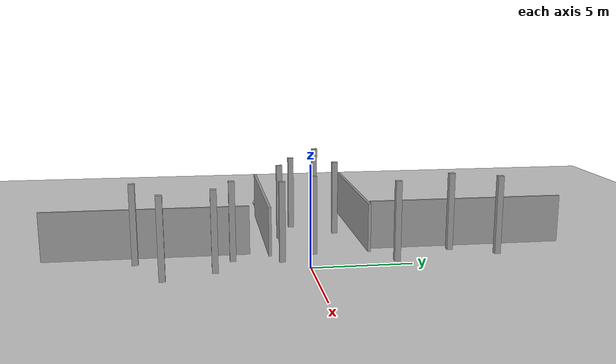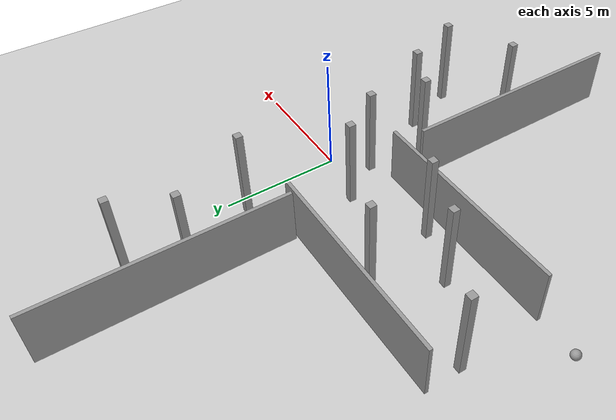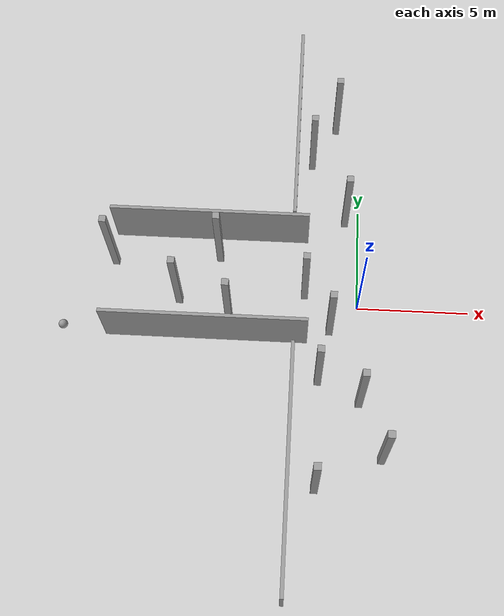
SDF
<sdf version="1.6">
 <world name="default">
  <model name="ground_plane">
   <static>1</static>
   <link name="link">
    <collision name="collision">
     <geometry><plane><normal>0 0 1</normal><size>100 100</size></plane></geometry>
     <surface><friction><ode><mu>100</mu><mu2>50</mu2></ode></friction></surface>
    </collision>
    <visual name="visual">
     <cast_shadows>0</cast_shadows>
     <geometry><plane><normal>0 0 1</normal><size>100 100</size></plane></geometry>
     <material>
      <script><uri>file://media/materials/scripts/gazebo.material</uri><name>Gazebo/Grey</name></script>
     </material>
    </visual>
   </link>
  </model>
  <model name="Untitled">
   <pose>-6.85388 3.37469 0 0 -0 0</pose>
   <link name="Wall_1">
    <collision name="Wall_1_Collision">
     <geometry><box><size>9 0.15 2.5</size></box></geometry>
     <pose>0 0 1.25 0 -0 0</pose>
    </collision>
    <visual name="Wall_1_Visual">
     <pose>0 0 1.25 0 -0 0</pose>
     <geometry><box><size>9 0.15 2.5</size></box></geometry>
     <material>
      <script><uri>file://media/materials/scripts/gazebo.material</uri><name>Gazebo/Grey</name></script>
      <ambient>1 1 1 1</ambient>
     </material>
     <meta><layer>0</layer></meta>
    </visual>
   </link>
   <static>1</static>
  </model>
  <model name="Untitled_clone">
   <pose>-6.74636 -1.72511 0 0 -0 0</pose>
   <link name="Wall_1">
    <collision name="Wall_1_Collision">
     <geometry><box><size>9 0.15 2.5</size></box></geometry>
     <pose>0 0 1.25 0 -0 0</pose>
    </collision>
    <visual name="Wall_1_Visual">
     <pose>0 0 1.25 0 -0 0</pose>
     <geometry><box><size>9 0.15 2.5</size></box></geometry>
     <material>
      <script><uri>file://media/materials/scripts/gazebo.material</uri><name>Gazebo/Grey</name></script>
      <ambient>1 1 1 1</ambient>
     </material>
     <meta><layer>0</layer></meta>
    </visual>
   </link>
   <static>1</static>
  </model>
  <model name="Untitled_0">
   <pose>-2.85637 -7.82972 0 0 -0 0</pose>
   <link name="Wall_3">
    <collision name="Wall_3_Collision">
     <geometry><box><size>10.25 0.15 2.5</size></box></geometry>
     <pose>0 0 1.25 0 -0 0</pose>
    </collision>
    <visual name="Wall_3_Visual">
     <pose>0 0 1.25 0 -0 0</pose>
     <geometry><box><size>10.25 0.15 2.5</size></box></geometry>
     <material>
      <script><uri>file://media/materials/scripts/gazebo.material</uri><name>Gazebo/Grey</name></script>
      <ambient>1 1 1 1</ambient>
     </material>
     <meta><layer>0</layer></meta>
    </visual>
    <pose>0 0 0 0 -0 -1.5708</pose>
   </link>
   <static>1</static>
  </model>
  <model name="Untitled_0_clone_0">
   <pose>-3.02847 8.65549 0 0 -0 0</pose>
   <link name="Wall_3">
    <collision name="Wall_3_Collision">
     <geometry><box><size>10.25 0.15 2.5</size></box></geometry>
     <pose>0 0 1.25 0 -0 0</pose>
    </collision>
    <visual name="Wall_3_Visual">
     <pose>0 0 1.25 0 -0 0</pose>
     <geometry><box><size>10.25 0.15 2.5</size></box></geometry>
     <material>
      <script><uri>file://media/materials/scripts/gazebo.material</uri><name>Gazebo/Grey</name></script>
      <ambient>1 1 1 1</ambient>
     </material>
     <meta><layer>0</layer></meta>
    </visual>
    <pose>0 0 0 0 -0 -1.5708</pose>
   </link>
   <static>1</static>
  </model>
  <model name="unit_box_clone_clone_24">
   <link name="link">
    <inertial>
     <mass>1000</mass>
     <inertia><ixx>1340.83</ixx><ixy>0</ixy><ixz>0</ixz><iyy>1340.83</iyy><iyz>0</iyz><izz>15</izz></inertia>
    </inertial>
    <visual name="visual">
     <geometry><box><size>0.3 0.3 4</size></box></geometry>
     <material>
      <script><name>Gazebo/Grey</name><uri>file://media/materials/scripts/gazebo.material</uri></script>
      <shader type="pixel"><normal_map>__default__</normal_map></shader>
      <ambient>0.3 0.3 0.3 1</ambient>
      <diffuse>0.7 0.7 0.7 1</diffuse>
      <specular>0.01 0.01 0.01 1</specular>
      <emissive>0 0 0 1</emissive>
     </material>
    </visual>
    <collision name="collision">
     <geometry><box><size>0.3 0.3 4</size></box></geometry>
     <surface>
      <friction>
       <ode><mu>1</mu><mu2>1</mu2><fdir1>0 0 0</fdir1><slip1>0</slip1><slip2>0</slip2></ode>
       <torsional>
        <coefficient>1</coefficient>
        <patch_radius>0</patch_radius>
        <surface_radius>0</surface_radius>
        <use_patch_radius>1</use_patch_radius>
        <ode><slip>0</slip></ode>
       </torsional>
      </friction>
      <bounce><restitution_coefficient>0</restitution_coefficient><threshold>1e+06</threshold></bounce>
      <contact>
       <collide_without_contact>0</collide_without_contact>
       <collide_without_contact_bitmask>1</collide_without_contact_bitmask>
       <collide_bitmask>1</collide_bitmask>
       <ode>
        <soft_cfm>0</soft_cfm>
        <soft_erp>0.2</soft_erp>
        <kp>1e+13</kp>
        <kd>1</kd>
        <max_vel>0.01</max_vel>
        <min_depth>0</min_depth>
       </ode>
       <bullet>
        <split_impulse>1</split_impulse>
        <split_impulse_penetration_threshold>-0.01</split_impulse_penetration_threshold>
        <soft_cfm>0</soft_cfm>
        <soft_erp>0.2</soft_erp>
        <kp>1e+13</kp>
        <kd>1</kd>
       </bullet>
      </contact>
     </surface>
    </collision>
   </link>
   <static>0</static>
   <pose>-11.2321 1.86645 2.00018 0.001194 1e-05 -0.002926</pose>
  </model>
  <model name="unit_box_clone_clone_24_clone">
   <link name="link">
    <inertial>
     <mass>1000</mass>
     <inertia><ixx>1340.83</ixx><ixy>0</ixy><ixz>0</ixz><iyy>1340.83</iyy><iyz>0</iyz><izz>15</izz></inertia>
    </inertial>
    <visual name="visual">
     <geometry><box><size>0.3 0.3 4</size></box></geometry>
     <material>
      <script><name>Gazebo/Grey</name><uri>file://media/materials/scripts/gazebo.material</uri></script>
      <shader type="pixel"><normal_map>__default__</normal_map></shader>
      <ambient>0.3 0.3 0.3 1</ambient>
      <diffuse>0.7 0.7 0.7 1</diffuse>
      <specular>0.01 0.01 0.01 1</specular>
      <emissive>0 0 0 1</emissive>
     </material>
    </visual>
    <collision name="collision">
     <geometry><box><size>0.3 0.3 4</size></box></geometry>
     <surface>
      <friction>
       <ode><mu>1</mu><mu2>1</mu2><fdir1>0 0 0</fdir1><slip1>0</slip1><slip2>0</slip2></ode>
       <torsional>
        <coefficient>1</coefficient>
        <patch_radius>0</patch_radius>
        <surface_radius>0</surface_radius>
        <use_patch_radius>1</use_patch_radius>
        <ode><slip>0</slip></ode>
       </torsional>
      </friction>
      <bounce><restitution_coefficient>0</restitution_coefficient><threshold>1e+06</threshold></bounce>
      <contact>
       <collide_without_contact>0</collide_without_contact>
       <collide_without_contact_bitmask>1</collide_without_contact_bitmask>
       <collide_bitmask>1</collide_bitmask>
       <ode>
        <soft_cfm>0</soft_cfm>
        <soft_erp>0.2</soft_erp>
        <kp>1e+13</kp>
        <kd>1</kd>
        <max_vel>0.01</max_vel>
        <min_depth>0</min_depth>
       </ode>
       <bullet>
        <split_impulse>1</split_impulse>
        <split_impulse_penetration_threshold>-0.01</split_impulse_penetration_threshold>
        <soft_cfm>0</soft_cfm>
        <soft_erp>0.2</soft_erp>
        <kp>1e+13</kp>
        <kd>1</kd>
       </bullet>
      </contact>
     </surface>
    </collision>
   </link>
   <static>0</static>
   <pose>-2.42598 0.508837 2.00018 0.001194 1e-05 -0.002926</pose>
  </model>
  <model name="unit_box_clone_clone_24_clone_0">
   <link name="link">
    <inertial>
     <mass>1000</mass>
     <inertia><ixx>1340.83</ixx><ixy>0</ixy><ixz>0</ixz><iyy>1340.83</iyy><iyz>0</iyz><izz>15</izz></inertia>
    </inertial>
    <visual name="visual">
     <geometry><box><size>0.3 0.3 4</size></box></geometry>
     <material>
      <script><name>Gazebo/Grey</name><uri>file://media/materials/scripts/gazebo.material</uri></script>
      <shader type="pixel"><normal_map>__default__</normal_map></shader>
      <ambient>0.3 0.3 0.3 1</ambient>
      <diffuse>0.7 0.7 0.7 1</diffuse>
      <specular>0.01 0.01 0.01 1</specular>
      <emissive>0 0 0 1</emissive>
     </material>
    </visual>
    <collision name="collision">
     <geometry><box><size>0.3 0.3 4</size></box></geometry>
     <surface>
      <friction>
       <ode><mu>1</mu><mu2>1</mu2><fdir1>0 0 0</fdir1><slip1>0</slip1><slip2>0</slip2></ode>
       <torsional>
        <coefficient>1</coefficient>
        <patch_radius>0</patch_radius>
        <surface_radius>0</surface_radius>
        <use_patch_radius>1</use_patch_radius>
        <ode><slip>0</slip></ode>
       </torsional>
      </friction>
      <bounce><restitution_coefficient>0</restitution_coefficient><threshold>1e+06</threshold></bounce>
      <contact>
       <collide_without_contact>0</collide_without_contact>
       <collide_without_contact_bitmask>1</collide_without_contact_bitmask>
       <collide_bitmask>1</collide_bitmask>
       <ode>
        <soft_cfm>0</soft_cfm>
        <soft_erp>0.2</soft_erp>
        <kp>1e+13</kp>
        <kd>1</kd>
        <max_vel>0.01</max_vel>
        <min_depth>0</min_depth>
       </ode>
       <bullet>
        <split_impulse>1</split_impulse>
        <split_impulse_penetration_threshold>-0.01</split_impulse_penetration_threshold>
        <soft_cfm>0</soft_cfm>
        <soft_erp>0.2</soft_erp>
        <kp>1e+13</kp>
        <kd>1</kd>
       </bullet>
      </contact>
     </surface>
    </collision>
   </link>
   <static>0</static>
   <pose>-1.26207 -1.22355 2.00018 0.001194 1e-05 -0.002926</pose>
  </model>
  <model name="unit_box_clone_clone_24_clone_2">
   <link name="link">
    <inertial>
     <mass>1000</mass>
     <inertia><ixx>1340.83</ixx><ixy>0</ixy><ixz>0</ixz><iyy>1340.83</iyy><iyz>0</iyz><izz>15</izz></inertia>
    </inertial>
    <visual name="visual">
     <geometry><box><size>0.3 0.3 4</size></box></geometry>
     <material>
      <script><name>Gazebo/Grey</name><uri>file://media/materials/scripts/gazebo.material</uri></script>
      <shader type="pixel"><normal_map>__default__</normal_map></shader>
      <ambient>0.3 0.3 0.3 1</ambient>
      <diffuse>0.7 0.7 0.7 1</diffuse>
      <specular>0.01 0.01 0.01 1</specular>
      <emissive>0 0 0 1</emissive>
     </material>
    </visual>
    <collision name="collision">
     <geometry><box><size>0.3 0.3 4</size></box></geometry>
     <surface>
      <friction>
       <ode><mu>1</mu><mu2>1</mu2><fdir1>0 0 0</fdir1><slip1>0</slip1><slip2>0</slip2></ode>
       <torsional>
        <coefficient>1</coefficient>
        <patch_radius>0</patch_radius>
        <surface_radius>0</surface_radius>
        <use_patch_radius>1</use_patch_radius>
        <ode><slip>0</slip></ode>
       </torsional>
      </friction>
      <bounce><restitution_coefficient>0</restitution_coefficient><threshold>1e+06</threshold></bounce>
      <contact>
       <collide_without_contact>0</collide_without_contact>
       <collide_without_contact_bitmask>1</collide_without_contact_bitmask>
       <collide_bitmask>1</collide_bitmask>
       <ode>
        <soft_cfm>0</soft_cfm>
        <soft_erp>0.2</soft_erp>
        <kp>1e+13</kp>
        <kd>1</kd>
        <max_vel>0.01</max_vel>
        <min_depth>0</min_depth>
       </ode>
       <bullet>
        <split_impulse>1</split_impulse>
        <split_impulse_penetration_threshold>-0.01</split_impulse_penetration_threshold>
        <soft_cfm>0</soft_cfm>
        <soft_erp>0.2</soft_erp>
        <kp>1e+13</kp>
        <kd>1</kd>
       </bullet>
      </contact>
     </surface>
    </collision>
   </link>
   <static>0</static>
   <pose>-0.653791 4.39949 2.00018 0.001194 1e-05 -0.002926</pose>
  </model>
  <model name="unit_box_clone_clone_24_clone_4">
   <link name="link">
    <inertial>
     <mass>1000</mass>
     <inertia><ixx>1340.83</ixx><ixy>0</ixy><ixz>0</ixz><iyy>1340.83</iyy><iyz>0</iyz><izz>15</izz></inertia>
    </inertial>
    <visual name="visual">
     <geometry><box><size>0.3 0.3 4</size></box></geometry>
     <material>
      <script><name>Gazebo/Grey</name><uri>file://media/materials/scripts/gazebo.material</uri></script>
      <shader type="pixel"><normal_map>__default__</normal_map></shader>
      <ambient>0.3 0.3 0.3 1</ambient>
      <diffuse>0.7 0.7 0.7 1</diffuse>
      <specular>0.01 0.01 0.01 1</specular>
      <emissive>0 0 0 1</emissive>
     </material>
    </visual>
    <collision name="collision">
     <geometry><box><size>0.3 0.3 4</size></box></geometry>
     <surface>
      <friction>
       <ode><mu>1</mu><mu2>1</mu2><fdir1>0 0 0</fdir1><slip1>0</slip1><slip2>0</slip2></ode>
       <torsional>
        <coefficient>1</coefficient>
        <patch_radius>0</patch_radius>
        <surface_radius>0</surface_radius>
        <use_patch_radius>1</use_patch_radius>
        <ode><slip>0</slip></ode>
       </torsional>
      </friction>
      <bounce><restitution_coefficient>0</restitution_coefficient><threshold>1e+06</threshold></bounce>
      <contact>
       <collide_without_contact>0</collide_without_contact>
       <collide_without_contact_bitmask>1</collide_without_contact_bitmask>
       <collide_bitmask>1</collide_bitmask>
       <ode>
        <soft_cfm>0</soft_cfm>
        <soft_erp>0.2</soft_erp>
        <kp>1e+13</kp>
        <kd>1</kd>
        <max_vel>0.01</max_vel>
        <min_depth>0</min_depth>
       </ode>
       <bullet>
        <split_impulse>1</split_impulse>
        <split_impulse_penetration_threshold>-0.01</split_impulse_penetration_threshold>
        <soft_cfm>0</soft_cfm>
        <soft_erp>0.2</soft_erp>
        <kp>1e+13</kp>
        <kd>1</kd>
       </bullet>
      </contact>
     </surface>
    </collision>
   </link>
   <static>0</static>
   <pose>-2.28627 7.58438 2.00018 0.001194 1e-05 -0.002926</pose>
  </model>
  <model name="unit_box_clone_clone_24_clone_6">
   <link name="link">
    <inertial>
     <mass>1000</mass>
     <inertia><ixx>1340.83</ixx><ixy>0</ixy><ixz>0</ixz><iyy>1340.83</iyy><iyz>0</iyz><izz>15</izz></inertia>
    </inertial>
    <visual name="visual">
     <geometry><box><size>0.3 0.3 4</size></box></geometry>
     <material>
      <script><name>Gazebo/Grey</name><uri>file://media/materials/scripts/gazebo.material</uri></script>
      <shader type="pixel"><normal_map>__default__</normal_map></shader>
      <ambient>0.3 0.3 0.3 1</ambient>
      <diffuse>0.7 0.7 0.7 1</diffuse>
      <specular>0.01 0.01 0.01 1</specular>
      <emissive>0 0 0 1</emissive>
     </material>
    </visual>
    <collision name="collision">
     <geometry><box><size>0.3 0.3 4</size></box></geometry>
     <surface>
      <friction>
       <ode><mu>1</mu><mu2>1</mu2><fdir1>0 0 0</fdir1><slip1>0</slip1><slip2>0</slip2></ode>
       <torsional>
        <coefficient>1</coefficient>
        <patch_radius>0</patch_radius>
        <surface_radius>0</surface_radius>
        <use_patch_radius>1</use_patch_radius>
        <ode><slip>0</slip></ode>
       </torsional>
      </friction>
      <bounce><restitution_coefficient>0</restitution_coefficient><threshold>1e+06</threshold></bounce>
      <contact>
       <collide_without_contact>0</collide_without_contact>
       <collide_without_contact_bitmask>1</collide_without_contact_bitmask>
       <collide_bitmask>1</collide_bitmask>
       <ode>
        <soft_cfm>0</soft_cfm>
        <soft_erp>0.2</soft_erp>
        <kp>1e+13</kp>
        <kd>1</kd>
        <max_vel>0.01</max_vel>
        <min_depth>0</min_depth>
       </ode>
       <bullet>
        <split_impulse>1</split_impulse>
        <split_impulse_penetration_threshold>-0.01</split_impulse_penetration_threshold>
        <soft_cfm>0</soft_cfm>
        <soft_erp>0.2</soft_erp>
        <kp>1e+13</kp>
        <kd>1</kd>
       </bullet>
      </contact>
     </surface>
    </collision>
   </link>
   <static>0</static>
   <pose>-1.17801 9.74891 2.00018 0.001194 1e-05 -0.002926</pose>
  </model>
  <model name="unit_box_clone_clone_24_clone_7">
   <link name="link">
    <inertial>
     <mass>1000</mass>
     <inertia><ixx>1340.83</ixx><ixy>0</ixy><ixz>0</ixz><iyy>1340.83</iyy><iyz>0</iyz><izz>15</izz></inertia>
    </inertial>
    <visual name="visual">
     <geometry><box><size>0.3 0.3 4</size></box></geometry>
     <material>
      <script><name>Gazebo/Grey</name><uri>file://media/materials/scripts/gazebo.material</uri></script>
      <shader type="pixel"><normal_map>__default__</normal_map></shader>
      <ambient>0.3 0.3 0.3 1</ambient>
      <diffuse>0.7 0.7 0.7 1</diffuse>
      <specular>0.01 0.01 0.01 1</specular>
      <emissive>0 0 0 1</emissive>
     </material>
    </visual>
    <collision name="collision">
     <geometry><box><size>0.3 0.3 4</size></box></geometry>
     <surface>
      <friction>
       <ode><mu>1</mu><mu2>1</mu2><fdir1>0 0 0</fdir1><slip1>0</slip1><slip2>0</slip2></ode>
       <torsional>
        <coefficient>1</coefficient>
        <patch_radius>0</patch_radius>
        <surface_radius>0</surface_radius>
        <use_patch_radius>1</use_patch_radius>
        <ode><slip>0</slip></ode>
       </torsional>
      </friction>
      <bounce><restitution_coefficient>0</restitution_coefficient><threshold>1e+06</threshold></bounce>
      <contact>
       <collide_without_contact>0</collide_without_contact>
       <collide_without_contact_bitmask>1</collide_without_contact_bitmask>
       <collide_bitmask>1</collide_bitmask>
       <ode>
        <soft_cfm>0</soft_cfm>
        <soft_erp>0.2</soft_erp>
        <kp>1e+13</kp>
        <kd>1</kd>
        <max_vel>0.01</max_vel>
        <min_depth>0</min_depth>
       </ode>
       <bullet>
        <split_impulse>1</split_impulse>
        <split_impulse_penetration_threshold>-0.01</split_impulse_penetration_threshold>
        <soft_cfm>0</soft_cfm>
        <soft_erp>0.2</soft_erp>
        <kp>1e+13</kp>
        <kd>1</kd>
       </bullet>
      </contact>
     </surface>
    </collision>
   </link>
   <static>0</static>
   <pose>-8.10764 0.035783 2.00018 0.001194 1e-05 -0.002926</pose>
  </model>
  <model name="unit_box_clone_clone_24_clone_8">
   <link name="link">
    <inertial>
     <mass>1000</mass>
     <inertia><ixx>1340.83</ixx><ixy>0</ixy><ixz>0</ixz><iyy>1340.83</iyy><iyz>0</iyz><izz>15</izz></inertia>
    </inertial>
    <visual name="visual">
     <geometry><box><size>0.3 0.3 4</size></box></geometry>
     <material>
      <script><name>Gazebo/Grey</name><uri>file://media/materials/scripts/gazebo.material</uri></script>
      <shader type="pixel"><normal_map>__default__</normal_map></shader>
      <ambient>0.3 0.3 0.3 1</ambient>
      <diffuse>0.7 0.7 0.7 1</diffuse>
      <specular>0.01 0.01 0.01 1</specular>
      <emissive>0 0 0 1</emissive>
     </material>
    </visual>
    <collision name="collision">
     <geometry><box><size>0.3 0.3 4</size></box></geometry>
     <surface>
      <friction>
       <ode><mu>1</mu><mu2>1</mu2><fdir1>0 0 0</fdir1><slip1>0</slip1><slip2>0</slip2></ode>
       <torsional>
        <coefficient>1</coefficient>
        <patch_radius>0</patch_radius>
        <surface_radius>0</surface_radius>
        <use_patch_radius>1</use_patch_radius>
        <ode><slip>0</slip></ode>
       </torsional>
      </friction>
      <bounce><restitution_coefficient>0</restitution_coefficient><threshold>1e+06</threshold></bounce>
      <contact>
       <collide_without_contact>0</collide_without_contact>
       <collide_without_contact_bitmask>1</collide_without_contact_bitmask>
       <collide_bitmask>1</collide_bitmask>
       <ode>
        <soft_cfm>0</soft_cfm>
        <soft_erp>0.2</soft_erp>
        <kp>1e+13</kp>
        <kd>1</kd>
        <max_vel>0.01</max_vel>
        <min_depth>0</min_depth>
       </ode>
       <bullet>
        <split_impulse>1</split_impulse>
        <split_impulse_penetration_threshold>-0.01</split_impulse_penetration_threshold>
        <soft_cfm>0</soft_cfm>
        <soft_erp>0.2</soft_erp>
        <kp>1e+13</kp>
        <kd>1</kd>
       </bullet>
      </contact>
     </surface>
    </collision>
   </link>
   <static>0</static>
   <pose>-6.39947 2.25822 2.00018 0.001194 1e-05 -0.002926</pose>
  </model>
  <model name="unit_box_clone_clone_24_clone_9">
   <link name="link">
    <inertial>
     <mass>1000</mass>
     <inertia><ixx>1340.83</ixx><ixy>0</ixy><ixz>0</ixz><iyy>1340.83</iyy><iyz>0</iyz><izz>15</izz></inertia>
    </inertial>
    <visual name="visual">
     <geometry><box><size>0.3 0.3 4</size></box></geometry>
     <material>
      <script><name>Gazebo/Grey</name><uri>file://media/materials/scripts/gazebo.material</uri></script>
      <shader type="pixel"><normal_map>__default__</normal_map></shader>
      <ambient>0.3 0.3 0.3 1</ambient>
      <diffuse>0.7 0.7 0.7 1</diffuse>
      <specular>0.01 0.01 0.01 1</specular>
      <emissive>0 0 0 1</emissive>
     </material>
    </visual>
    <collision name="collision">
     <geometry><box><size>0.3 0.3 4</size></box></geometry>
     <surface>
      <friction>
       <ode><mu>1</mu><mu2>1</mu2><fdir1>0 0 0</fdir1><slip1>0</slip1><slip2>0</slip2></ode>
       <torsional>
        <coefficient>1</coefficient>
        <patch_radius>0</patch_radius>
        <surface_radius>0</surface_radius>
        <use_patch_radius>1</use_patch_radius>
        <ode><slip>0</slip></ode>
       </torsional>
      </friction>
      <bounce><restitution_coefficient>0</restitution_coefficient><threshold>1e+06</threshold></bounce>
      <contact>
       <collide_without_contact>0</collide_without_contact>
       <collide_without_contact_bitmask>1</collide_without_contact_bitmask>
       <collide_bitmask>1</collide_bitmask>
       <ode>
        <soft_cfm>0</soft_cfm>
        <soft_erp>0.2</soft_erp>
        <kp>1e+13</kp>
        <kd>1</kd>
        <max_vel>0.01</max_vel>
        <min_depth>0</min_depth>
       </ode>
       <bullet>
        <split_impulse>1</split_impulse>
        <split_impulse_penetration_threshold>-0.01</split_impulse_penetration_threshold>
        <soft_cfm>0</soft_cfm>
        <soft_erp>0.2</soft_erp>
        <kp>1e+13</kp>
        <kd>1</kd>
       </bullet>
      </contact>
     </surface>
    </collision>
   </link>
   <static>0</static>
   <pose>-5.77276 -0.871201 2.00018 0.001194 1e-05 -0.002926</pose>
  </model>
  <model name="unit_box_clone_clone_24_clone_10">
   <link name="link">
    <inertial>
     <mass>1000</mass>
     <inertia><ixx>1340.83</ixx><ixy>0</ixy><ixz>0</ixz><iyy>1340.83</iyy><iyz>0</iyz><izz>15</izz></inertia>
    </inertial>
    <visual name="visual">
     <geometry><box><size>0.3 0.3 4</size></box></geometry>
     <material>
      <script><name>Gazebo/Grey</name><uri>file://media/materials/scripts/gazebo.material</uri></script>
      <shader type="pixel"><normal_map>__default__</normal_map></shader>
      <ambient>0.3 0.3 0.3 1</ambient>
      <diffuse>0.7 0.7 0.7 1</diffuse>
      <specular>0.01 0.01 0.01 1</specular>
      <emissive>0 0 0 1</emissive>
     </material>
    </visual>
    <collision name="collision">
     <geometry><box><size>0.3 0.3 4</size></box></geometry>
     <surface>
      <friction>
       <ode><mu>1</mu><mu2>1</mu2><fdir1>0 0 0</fdir1><slip1>0</slip1><slip2>0</slip2></ode>
       <torsional>
        <coefficient>1</coefficient>
        <patch_radius>0</patch_radius>
        <surface_radius>0</surface_radius>
        <use_patch_radius>1</use_patch_radius>
        <ode><slip>0</slip></ode>
       </torsional>
      </friction>
      <bounce><restitution_coefficient>0</restitution_coefficient><threshold>1e+06</threshold></bounce>
      <contact>
       <collide_without_contact>0</collide_without_contact>
       <collide_without_contact_bitmask>1</collide_without_contact_bitmask>
       <collide_bitmask>1</collide_bitmask>
       <ode>
        <soft_cfm>0</soft_cfm>
        <soft_erp>0.2</soft_erp>
        <kp>1e+13</kp>
        <kd>1</kd>
        <max_vel>0.01</max_vel>
        <min_depth>0</min_depth>
       </ode>
       <bullet>
        <split_impulse>1</split_impulse>
        <split_impulse_penetration_threshold>-0.01</split_impulse_penetration_threshold>
        <soft_cfm>0</soft_cfm>
        <soft_erp>0.2</soft_erp>
        <kp>1e+13</kp>
        <kd>1</kd>
       </bullet>
      </contact>
     </surface>
    </collision>
   </link>
   <static>0</static>
   <pose>0.089514 -4.54896 2.00018 0.001194 1e-05 -0.002926</pose>
  </model>
  <model name="unit_box_clone_clone_24_clone_11">
   <link name="link">
    <inertial>
     <mass>1000</mass>
     <inertia><ixx>1340.83</ixx><ixy>0</ixy><ixz>0</ixz><iyy>1340.83</iyy><iyz>0</iyz><izz>15</izz></inertia>
    </inertial>
    <visual name="visual">
     <geometry><box><size>0.3 0.3 4</size></box></geometry>
     <material>
      <script><name>Gazebo/Grey</name><uri>file://media/materials/scripts/gazebo.material</uri></script>
      <shader type="pixel"><normal_map>__default__</normal_map></shader>
      <ambient>0.3 0.3 0.3 1</ambient>
      <diffuse>0.7 0.7 0.7 1</diffuse>
      <specular>0.01 0.01 0.01 1</specular>
      <emissive>0 0 0 1</emissive>
     </material>
    </visual>
    <collision name="collision">
     <geometry><box><size>0.3 0.3 4</size></box></geometry>
     <surface>
      <friction>
       <ode><mu>1</mu><mu2>1</mu2><fdir1>0 0 0</fdir1><slip1>0</slip1><slip2>0</slip2></ode>
       <torsional>
        <coefficient>1</coefficient>
        <patch_radius>0</patch_radius>
        <surface_radius>0</surface_radius>
        <use_patch_radius>1</use_patch_radius>
        <ode><slip>0</slip></ode>
       </torsional>
      </friction>
      <bounce><restitution_coefficient>0</restitution_coefficient><threshold>1e+06</threshold></bounce>
      <contact>
       <collide_without_contact>0</collide_without_contact>
       <collide_without_contact_bitmask>1</collide_without_contact_bitmask>
       <collide_bitmask>1</collide_bitmask>
       <ode>
        <soft_cfm>0</soft_cfm>
        <soft_erp>0.2</soft_erp>
        <kp>1e+13</kp>
        <kd>1</kd>
        <max_vel>0.01</max_vel>
        <min_depth>0</min_depth>
       </ode>
       <bullet>
        <split_impulse>1</split_impulse>
        <split_impulse_penetration_threshold>-0.01</split_impulse_penetration_threshold>
        <soft_cfm>0</soft_cfm>
        <soft_erp>0.2</soft_erp>
        <kp>1e+13</kp>
        <kd>1</kd>
       </bullet>
      </contact>
     </surface>
    </collision>
   </link>
   <static>0</static>
   <pose>-1.71692 -3.62212 2.00018 0.001194 1e-05 -0.002926</pose>
  </model>
  <model name="unit_box_clone_clone_24_clone_14">
   <link name="link">
    <inertial>
     <mass>1000</mass>
     <inertia><ixx>1340.83</ixx><ixy>0</ixy><ixz>0</ixz><iyy>1340.83</iyy><iyz>0</iyz><izz>15</izz></inertia>
    </inertial>
    <visual name="visual">
     <geometry><box><size>0.3 0.3 4</size></box></geometry>
     <material>
      <script><name>Gazebo/Grey</name><uri>file://media/materials/scripts/gazebo.material</uri></script>
      <shader type="pixel"><normal_map>__default__</normal_map></shader>
      <ambient>0.3 0.3 0.3 1</ambient>
      <diffuse>0.7 0.7 0.7 1</diffuse>
      <specular>0.01 0.01 0.01 1</specular>
      <emissive>0 0 0 1</emissive>
     </material>
    </visual>
    <collision name="collision">
     <geometry><box><size>0.3 0.3 4</size></box></geometry>
     <surface>
      <friction>
       <ode><mu>1</mu><mu2>1</mu2><fdir1>0 0 0</fdir1><slip1>0</slip1><slip2>0</slip2></ode>
       <torsional>
        <coefficient>1</coefficient>
        <patch_radius>0</patch_radius>
        <surface_radius>0</surface_radius>
        <use_patch_radius>1</use_patch_radius>
        <ode><slip>0</slip></ode>
       </torsional>
      </friction>
      <bounce><restitution_coefficient>0</restitution_coefficient><threshold>1e+06</threshold></bounce>
      <contact>
       <collide_without_contact>0</collide_without_contact>
       <collide_without_contact_bitmask>1</collide_without_contact_bitmask>
       <collide_bitmask>1</collide_bitmask>
       <ode>
        <soft_cfm>0</soft_cfm>
        <soft_erp>0.2</soft_erp>
        <kp>1e+13</kp>
        <kd>1</kd>
        <max_vel>0.01</max_vel>
        <min_depth>0</min_depth>
       </ode>
       <bullet>
        <split_impulse>1</split_impulse>
        <split_impulse_penetration_threshold>-0.01</split_impulse_penetration_threshold>
        <soft_cfm>0</soft_cfm>
        <soft_erp>0.2</soft_erp>
        <kp>1e+13</kp>
        <kd>1</kd>
       </bullet>
      </contact>
     </surface>
    </collision>
   </link>
   <static>0</static>
   <pose>1.05509 -6.98095 2.00018 0.001194 1e-05 -0.002926</pose>
  </model>
  <model name="unit_box_clone_clone_24_clone_15">
   <link name="link">
    <inertial>
     <mass>1000</mass>
     <inertia><ixx>1340.83</ixx><ixy>0</ixy><ixz>0</ixz><iyy>1340.83</iyy><iyz>0</iyz><izz>15</izz></inertia>
    </inertial>
    <visual name="visual">
     <geometry><box><size>0.3 0.3 4</size></box></geometry>
     <material>
      <script><name>Gazebo/Grey</name><uri>file://media/materials/scripts/gazebo.material</uri></script>
      <shader type="pixel"><normal_map>__default__</normal_map></shader>
      <ambient>0.3 0.3 0.3 1</ambient>
      <diffuse>0.7 0.7 0.7 1</diffuse>
      <specular>0.01 0.01 0.01 1</specular>
      <emissive>0 0 0 1</emissive>
     </material>
    </visual>
    <collision name="collision">
     <geometry><box><size>0.3 0.3 4</size></box></geometry>
     <surface>
      <friction>
       <ode><mu>1</mu><mu2>1</mu2><fdir1>0 0 0</fdir1><slip1>0</slip1><slip2>0</slip2></ode>
       <torsional>
        <coefficient>1</coefficient>
        <patch_radius>0</patch_radius>
        <surface_radius>0</surface_radius>
        <use_patch_radius>1</use_patch_radius>
        <ode><slip>0</slip></ode>
       </torsional>
      </friction>
      <bounce><restitution_coefficient>0</restitution_coefficient><threshold>1e+06</threshold></bounce>
      <contact>
       <collide_without_contact>0</collide_without_contact>
       <collide_without_contact_bitmask>1</collide_without_contact_bitmask>
       <collide_bitmask>1</collide_bitmask>
       <ode>
        <soft_cfm>0</soft_cfm>
        <soft_erp>0.2</soft_erp>
        <kp>1e+13</kp>
        <kd>1</kd>
        <max_vel>0.01</max_vel>
        <min_depth>0</min_depth>
       </ode>
       <bullet>
        <split_impulse>1</split_impulse>
        <split_impulse_penetration_threshold>-0.01</split_impulse_penetration_threshold>
        <soft_cfm>0</soft_cfm>
        <soft_erp>0.2</soft_erp>
        <kp>1e+13</kp>
        <kd>1</kd>
       </bullet>
      </contact>
     </surface>
    </collision>
   </link>
   <static>0</static>
   <pose>-1.7255 -8.34846 2.00018 0.001194 1e-05 -0.002926</pose>
  </model>
  <model name="unit_sphere">
   <link name="link">
    <inertial>
     <mass>1</mass>
     <inertia><ixx>0.1</ixx><ixy>0</ixy><ixz>0</ixz><iyy>0.1</iyy><iyz>0</iyz><izz>0.1</izz></inertia>
    </inertial>
    <gravity>0</gravity>
    <visual name="visual">
     <geometry><sphere><radius>0.203941</radius></sphere></geometry>
     <material>
      <script><name>Gazebo/Grey</name><uri>file://media/materials/scripts/gazebo.material</uri></script>
      <shader type="pixel"><normal_map>__default__</normal_map></shader>
     </material>
    </visual>
    <collision name="collision">
     <geometry><sphere><radius>0.203941</radius></sphere></geometry>
     <surface>
      <friction>
       <ode><mu>1</mu><mu2>1</mu2><fdir1>0 0 0</fdir1><slip1>0</slip1><slip2>0</slip2></ode>
       <torsional>
        <coefficient>1</coefficient>
        <patch_radius>0</patch_radius>
        <surface_radius>0</surface_radius>
        <use_patch_radius>1</use_patch_radius>
        <ode><slip>0</slip></ode>
       </torsional>
      </friction>
      <bounce><restitution_coefficient>0</restitution_coefficient><threshold>1e+06</threshold></bounce>
      <contact>
       <collide_without_contact>0</collide_without_contact>
       <collide_without_contact_bitmask>1</collide_without_contact_bitmask>
       <collide_bitmask>1</collide_bitmask>
       <ode>
        <soft_cfm>0</soft_cfm>
        <soft_erp>0.2</soft_erp>
        <kp>1e+13</kp>
        <kd>1</kd>
        <max_vel>0.01</max_vel>
        <min_depth>0</min_depth>
       </ode>
       <bullet>
        <split_impulse>1</split_impulse>
        <split_impulse_penetration_threshold>-0.01</split_impulse_penetration_threshold>
        <soft_cfm>0</soft_cfm>
        <soft_erp>0.2</soft_erp>
        <kp>1e+13</kp>
        <kd>1</kd>
       </bullet>
      </contact>
     </surface>
    </collision>
   </link>
   <static>0</static>
   <pose>-13.1559 -1.55765 0.358101 0 -0 0</pose>
  </model>
 </world>
</sdf>
